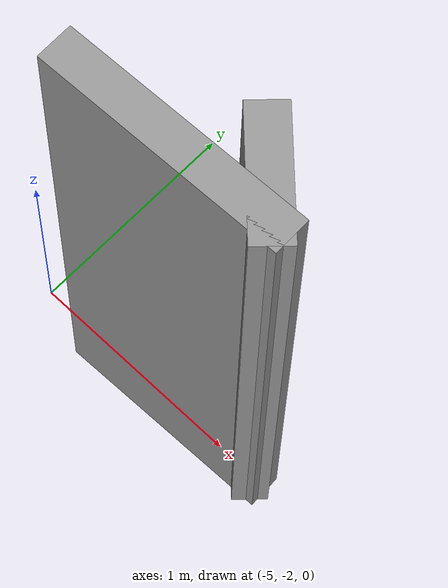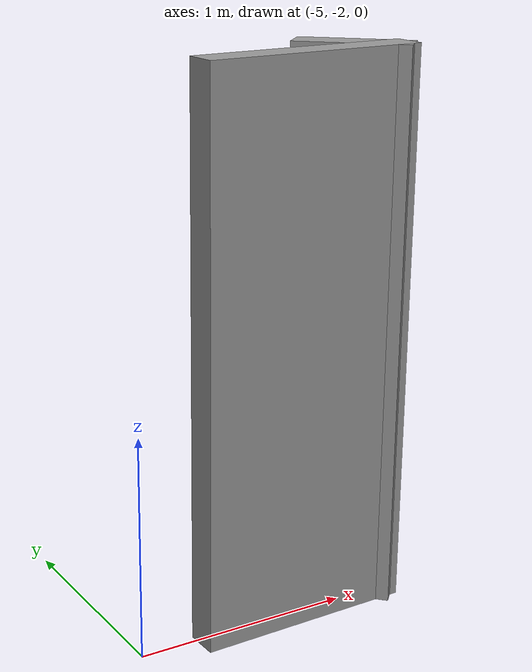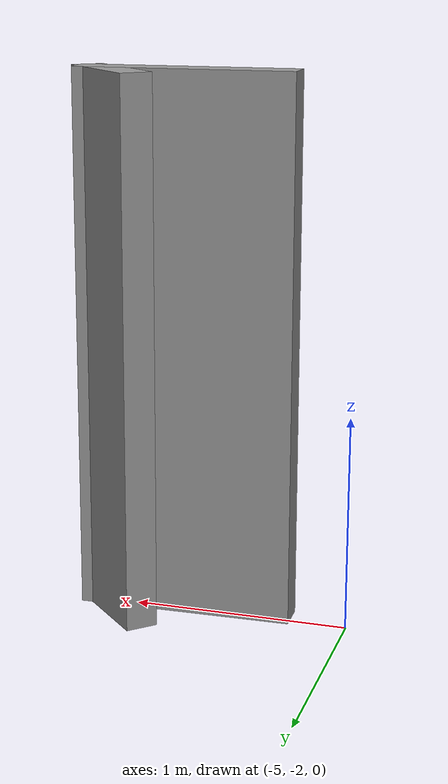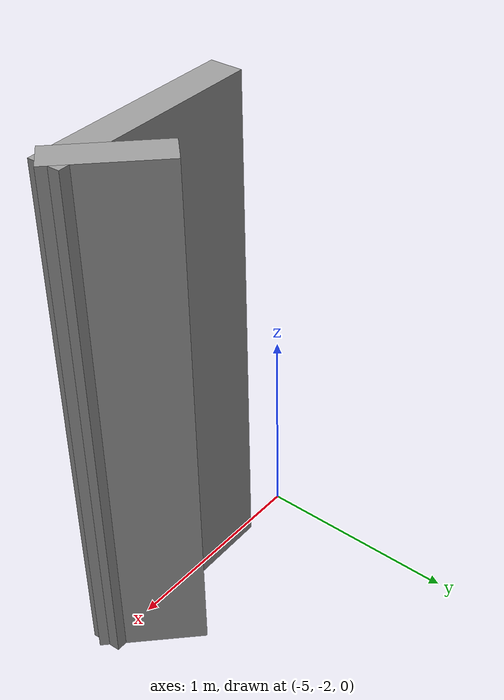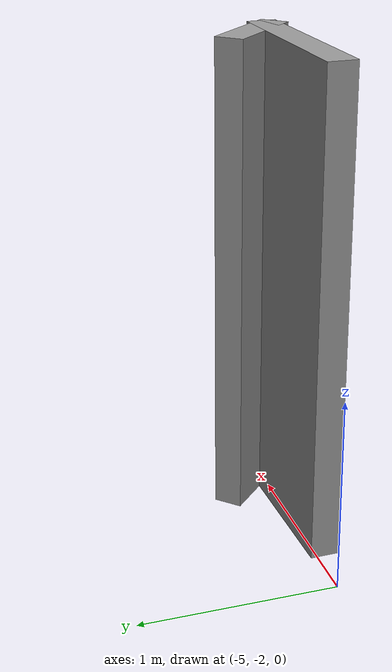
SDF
<?xml version='1.0'?>
<sdf version='1.6'>
  <model name='so1_1'>
    <pose frame=''>-4.22028 -1.90626 0 0 -0 0</pose>
    <link name='Wall_0'>
      <collision name='Wall_0_Collision'>
        <geometry>
          <box>
            <size>1 0.15 2.5</size>
          </box>
        </geometry>
        <pose frame=''>0 0 1.25 0 -0 0</pose>
      </collision>
      <visual name='Wall_0_Visual'>
        <pose frame=''>0 0 1.25 0 -0 0</pose>
        <geometry>
          <box>
            <size>1 0.15 2.5</size>
          </box>
        </geometry>
        <material>
          <script>
            <uri>file://media/materials/scripts/gazebo.material</uri>
            <name>Gazebo/Grey</name>
          </script>
          <ambient>1 1 1 1</ambient>
        </material>
        <meta>
          <layer>0</layer>
        </meta>
      </visual>
      <pose frame=''>-0.01472 -0.123744 0 0 -0 0.023525</pose>
    </link>
    <link name='Wall_1'>
      <collision name='Wall_1_Collision'>
        <geometry>
          <box>
            <size>0.5 0.15 2.5</size>
          </box>
        </geometry>
        <pose frame=''>0 0 1.25 0 -0 0</pose>
      </collision>
      <visual name='Wall_1_Visual'>
        <pose frame=''>0 0 1.25 0 -0 0</pose>
        <geometry>
          <box>
            <size>0.5 0.15 2.5</size>
          </box>
        </geometry>
        <material>
          <script>
            <uri>file://media/materials/scripts/gazebo.material</uri>
            <name>Gazebo/Grey</name>
          </script>
          <ambient>1 1 1 1</ambient>
        </material>
        <meta>
          <layer>0</layer>
        </meta>
      </visual>
      <pose frame=''>0.286536 -0 0 0 -0 2.35619</pose>
    </link>
    <static>1</static>
  </model>
</sdf>
